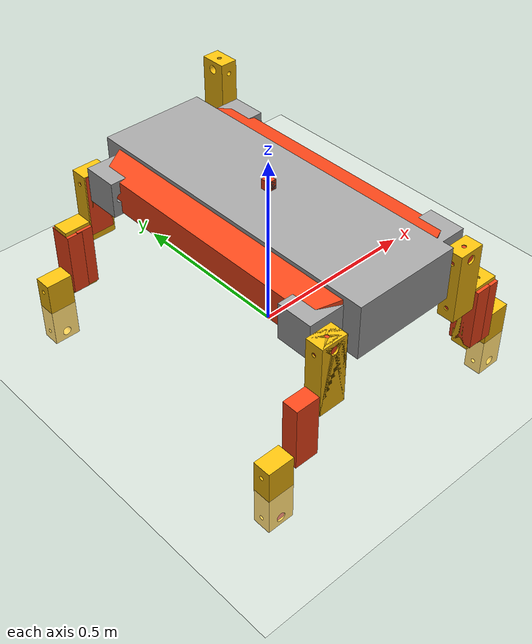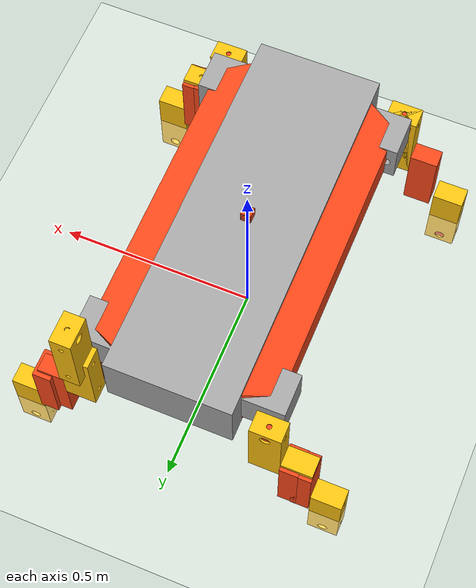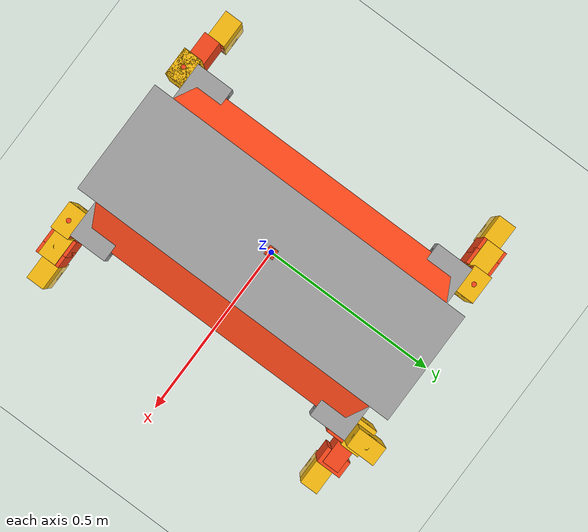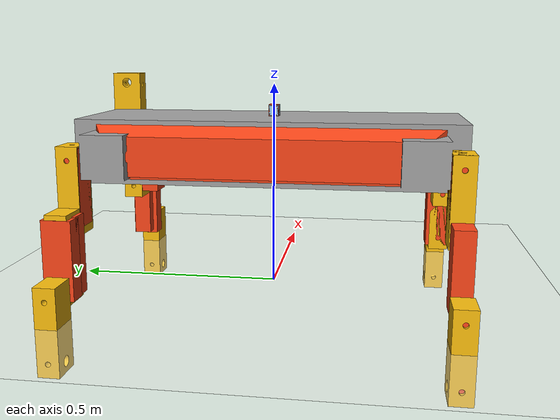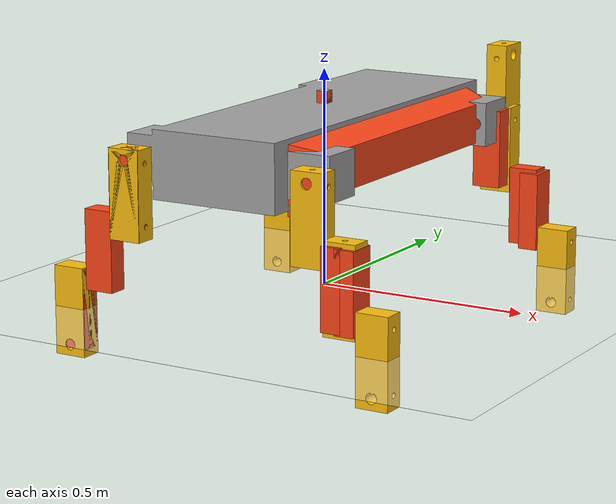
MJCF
<mujoco model="bad_robot">
  <default>
    <default class="robot">
      <default class="robstride_03">
        <joint armature="0.02" frictionloss="0.2" damping="0.01" actuatorfrcrange="-60.0 60.0" />
        <motor ctrlrange="-60.0 60.0" />
      </default>
      <default class="robstride_02">
        <joint armature="0.0042" frictionloss="0.1" damping="0.01" actuatorfrcrange="-17.0 17.0" />
        <motor ctrlrange="-17.0 17.0" />
      </default>
      <default class="visual">
        <geom material="visualgeom" contype="0" conaffinity="0" group="2" />
      </default>
      <default class="collision">
        <geom material="collision_material" condim="3" contype="0" conaffinity="1" priority="1" group="1" solref="0.005 1" solimp="0.99 0.999 1e-05" friction="0.64" />
      </default>
    </default>
    <mesh maxhullvert="64" />
    <default class="floor">
      <geom contype="1" conaffinity="1" group="0" type="plane" size="0 0 0.05" material="groundplane" rgba="1 1 1 0.3" />
    </default>
  </default>

  <compiler angle="radian" />

  <asset>
    <material name="base_material" rgba="1 0 0 1" />
    <material name="torso_material" rgba="0.647059 0.647059 0.647059 1" />
    <material name="IMU_material" rgba="0.615686 0.811765 0.929412 1" />
    <material name="leg_link_material" rgba="1 0.756863 0.054902 1" />
    <material name="default_material" rgba="0.7 0.7 0.7 1" />
    <material name="collision_material" rgba="1.0 0.28 0.1 0.9" />
    <mesh name="torso_collision.stl" file="meshes/torso_collision.stl" />
    <mesh name="torso.stl" file="meshes/torso.stl" />
    <mesh name="IMU_collision.stl" file="meshes/IMU_collision.stl" />
    <mesh name="IMU.stl" file="meshes/IMU.stl" />
    <mesh name="leg_link_collision.stl" file="meshes/leg_link_collision.stl" />
    <mesh name="leg_link.stl" file="meshes/leg_link.stl" />
    <mesh name="leg_link_5_collision.stl" file="meshes/leg_link_5_collision.stl" />
    <mesh name="leg_link_5.stl" file="meshes/leg_link_5.stl" />
    <mesh name="leg_link_9_collision.stl" file="meshes/leg_link_9_collision.stl" />
    <mesh name="leg_link_9.stl" file="meshes/leg_link_9.stl" />
    <mesh name="leg_link_2_collision.stl" file="meshes/leg_link_2_collision.stl" />
    <mesh name="leg_link_2.stl" file="meshes/leg_link_2.stl" />
    <mesh name="leg_link_6_collision.stl" file="meshes/leg_link_6_collision.stl" />
    <mesh name="leg_link_6.stl" file="meshes/leg_link_6.stl" />
    <mesh name="leg_link_10_collision.stl" file="meshes/leg_link_10_collision.stl" />
    <mesh name="leg_link_10.stl" file="meshes/leg_link_10.stl" />
    <mesh name="leg_link_3_collision.stl" file="meshes/leg_link_3_collision.stl" />
    <mesh name="leg_link_3.stl" file="meshes/leg_link_3.stl" />
    <mesh name="leg_link_7_collision.stl" file="meshes/leg_link_7_collision.stl" />
    <mesh name="leg_link_7.stl" file="meshes/leg_link_7.stl" />
    <mesh name="leg_link_11_collision.stl" file="meshes/leg_link_11_collision.stl" />
    <mesh name="leg_link_11.stl" file="meshes/leg_link_11.stl" />
    <mesh name="leg_link_4_collision.stl" file="meshes/leg_link_4_collision.stl" />
    <mesh name="leg_link_4.stl" file="meshes/leg_link_4.stl" />
    <mesh name="leg_link_8_collision.stl" file="meshes/leg_link_8_collision.stl" />
    <mesh name="leg_link_8.stl" file="meshes/leg_link_8.stl" />
    <mesh name="leg_link_12_collision.stl" file="meshes/leg_link_12_collision.stl" />
    <mesh name="leg_link_12.stl" file="meshes/leg_link_12.stl" />
    <texture type="2d" name="groundplane" builtin="checker" mark="edge" rgb1="0.2 0.3 0.4" rgb2="0.1 0.2 0.3" markrgb="0.8 0.8 0.8" width="300" height="300" />
    <material name="groundplane" texture="groundplane" texuniform="true" texrepeat="5 5" reflectance="0.2" />
  </asset>

  <worldbody>
    <body name="base" pos="0.00000000 0.00000000 0.34575001" quat="1 0 0 0" childclass="robot">
      <freejoint name="floating_base" />
      <geom name="base_visual" pos="0 0 0" quat="1.0 0.0 0.0 0.0" material="base_material" type="sphere" size="0.01" class="visual" />
      <body name="torso" pos="0 0 0" quat="1.0 0.0 0.0 0.0">
        <inertial pos="0 0 0" quat="1.0 0.0 0.0 0.0" mass="123.022540" diaginertia="9.238757 1.55296 10.325992" />
        <geom name="torso_collision" pos="0 0 0" quat="1.0 0.0 0.0 0.0" type="mesh" mesh="torso_collision.stl" class="collision" />
        <geom name="torso_visual" pos="0 0 0" quat="1.0 0.0 0.0 0.0" material="torso_material" type="mesh" mesh="torso.stl" class="visual" />
        <body name="IMU" pos="0 0 0.077200" quat="-1.7320510330969933e-07 0.999999999999985 0.0 -0.0">
          <inertial pos="0 0 -0.014010" quat="1.0 0.0 0.0 0.0" mass="0.022597" diaginertia="3e-06 3e-06 2e-06" />
          <geom name="IMU_collision" pos="0 0 0" quat="1.0 0.0 0.0 0.0" type="mesh" mesh="IMU_collision.stl" class="collision" />
          <geom name="IMU_visual" pos="0 0 0" quat="1.0 0.0 0.0 0.0" material="IMU_material" type="mesh" mesh="IMU.stl" class="visual" />
          <site name="IMU_site" quat="1.0 0.0 0.0 0.0" pos="0.0 0.0 0.0" />
        </body>
        <body name="leg_link" pos="-0.228600 -0.407400 0" quat="0.7071068967259818 -0.7071066656470943 0.0 0.0">
          <joint name="dof_fr" type="hinge" ref="0.0" class="robstride_03" range="-0.523599 2.094395" axis="0 0 1" />
          <inertial pos="0 0.078690 -0.025400" quat="1.0 0.0 0.0 0.0" mass="2.022037" diaginertia="0.007143 0.001452 0.007706" />
          <geom name="leg_link_collision" pos="0 0 0" quat="1.0 0.0 0.0 0.0" type="mesh" mesh="leg_link_collision.stl" class="collision" />
          <geom name="leg_link_visual" pos="0 0 0" quat="1.0 0.0 0.0 0.0" material="leg_link_material" type="mesh" mesh="leg_link.stl" class="visual" />
          <body name="leg_link_5" pos="-0.039100 0.146050 -0.025400" quat="0.7071068967259818 0.0 -0.7071066656470943 0.0">
            <joint name="dof_mid" type="hinge" ref="0.0" class="robstride_03" range="-1.570796 1.570796" axis="0 0 -1" />
            <inertial pos="0 0.067360 0.038100" quat="1.0 0.0 0.0 0.0" mass="2.022037" diaginertia="0.007706 0.001452 0.007143" />
            <geom name="leg_link_5_collision" pos="0 0 0" quat="1.0 0.0 0.0 0.0" type="mesh" mesh="leg_link_5_collision.stl" class="collision" />
            <geom name="leg_link_5_visual" pos="0 0 0" quat="1.0 0.0 0.0 0.0" material="leg_link_material" type="mesh" mesh="leg_link_5.stl" class="visual" />
            <body name="leg_link_9" pos="0 0.139700 0.077200" quat="-1.7320510330969933e-07 0.999999999999985 0.0 -0.0">
              <joint name="dof_bottom_3" type="hinge" ref="0.0" class="robstride_02" range="-1.570796 1.570796" axis="0 0 1" />
              <inertial pos="0 -0.067360 -0.038100" quat="1.0 0.0 0.0 0.0" mass="2.022037" diaginertia="0.007706 0.001452 0.007143" />
              <geom name="leg_link_9_collision" pos="0 0 0" quat="1.0 0.0 0.0 0.0" type="mesh" mesh="leg_link_9_collision.stl" class="collision" />
              <geom name="leg_link_9_visual" pos="0 0 0" quat="1.0 0.0 0.0 0.0" material="leg_link_material" type="mesh" mesh="leg_link_9.stl" class="visual" />
            </body>
          </body>
        </body>
        <body name="leg_link_2" pos="-0.228600 0.407400 0" quat="0.7071068967259818 -0.7071066656470943 0.0 0.0">
          <joint name="dof_br" type="hinge" ref="0.0" class="robstride_03" range="-2.094395 0.523599" axis="0 0 -1" />
          <inertial pos="0 0.078690 0.025400" quat="1.0 0.0 0.0 0.0" mass="2.022037" diaginertia="0.007143 0.001452 0.007706" />
          <geom name="leg_link_2_collision" pos="0 0 0" quat="1.0 0.0 0.0 0.0" type="mesh" mesh="leg_link_2_collision.stl" class="collision" />
          <geom name="leg_link_2_visual" pos="0 0 0" quat="1.0 0.0 0.0 0.0" material="leg_link_material" type="mesh" mesh="leg_link_2.stl" class="visual" />
          <body name="leg_link_6" pos="-0.039100 0.146050 0.025400" quat="0.7071068967259818 0.0 -0.7071066656470943 0.0">
            <joint name="dof_mid_2" type="hinge" ref="0.0" class="robstride_03" range="-1.570796 1.570796" axis="0 0 -1" />
            <inertial pos="0 0.067360 0.038100" quat="1.0 0.0 0.0 0.0" mass="2.022037" diaginertia="0.007706 0.001452 0.007143" />
            <geom name="leg_link_6_collision" pos="0 0 0" quat="1.0 0.0 0.0 0.0" type="mesh" mesh="leg_link_6_collision.stl" class="collision" />
            <geom name="leg_link_6_visual" pos="0 0 0" quat="1.0 0.0 0.0 0.0" material="leg_link_material" type="mesh" mesh="leg_link_6.stl" class="visual" />
            <body name="leg_link_10" pos="0 0.139700 0.077200" quat="-1.7320510330969933e-07 0.999999999999985 0.0 -0.0">
              <joint name="dof_bottom_4" type="hinge" ref="0.0" class="robstride_02" range="-1.570796 1.570796" axis="0 0 1" />
              <inertial pos="0 -0.067360 -0.038100" quat="1.0 0.0 0.0 0.0" mass="2.022037" diaginertia="0.007706 0.001452 0.007143" />
              <geom name="leg_link_10_collision" pos="0 0 0" quat="1.0 0.0 0.0 0.0" type="mesh" mesh="leg_link_10_collision.stl" class="collision" />
              <geom name="leg_link_10_visual" pos="0 0 0" quat="1.0 0.0 0.0 0.0" material="leg_link_material" type="mesh" mesh="leg_link_10.stl" class="visual" />
            </body>
          </body>
        </body>
        <body name="leg_link_3" pos="0.228600 0.407400 0" quat="-1.2247452309842457e-07 1.22474483074382e-07 0.7071066656470838 -0.7071068967259713">
          <joint name="dof_bl" type="hinge" ref="0.0" class="robstride_03" range="-0.523599 2.094395" axis="0 0 1" />
          <inertial pos="0 0.078690 -0.025400" quat="1.0 0.0 0.0 0.0" mass="2.022037" diaginertia="0.007143 0.001452 0.007706" />
          <geom name="leg_link_3_collision" pos="0 0 0" quat="1.0 0.0 0.0 0.0" type="mesh" mesh="leg_link_3_collision.stl" class="collision" />
          <geom name="leg_link_3_visual" pos="0 0 0" quat="1.0 0.0 0.0 0.0" material="leg_link_material" type="mesh" mesh="leg_link_3.stl" class="visual" />
          <body name="leg_link_7" pos="-0.039100 0.146050 -0.025400" quat="0.7071068967259818 0.0 -0.7071066656470943 0.0">
            <joint name="dof_bottom" type="hinge" ref="0.0" class="robstride_02" range="-1.570796 1.570796" axis="0 0 -1" />
            <inertial pos="0 0.072340 0.038100" quat="1.0 0.0 0.0 0.0" mass="2.022037" diaginertia="0.007706 0.001452 0.007143" />
            <geom name="leg_link_7_collision" pos="0 0 0" quat="1.0 0.0 0.0 0.0" type="mesh" mesh="leg_link_7_collision.stl" class="collision" />
            <geom name="leg_link_7_visual" pos="0 0 0" quat="1.0 0.0 0.0 0.0" material="leg_link_material" type="mesh" mesh="leg_link_7.stl" class="visual" />
            <body name="leg_link_11" pos="0 0.139700 0.077200" quat="-1.7320510330969933e-07 0.999999999999985 0.0 -0.0">
              <joint name="dof_mid_3" type="hinge" ref="0.0" class="robstride_03" range="-1.570796 1.570796" axis="0 0 1" />
              <inertial pos="0 -0.067360 -0.038100" quat="1.0 0.0 0.0 0.0" mass="2.022037" diaginertia="0.007706 0.001452 0.007143" />
              <geom name="leg_link_11_collision" pos="0 0 0" quat="1.0 0.0 0.0 0.0" type="mesh" mesh="leg_link_11_collision.stl" class="collision" />
              <geom name="leg_link_11_visual" pos="0 0 0" quat="1.0 0.0 0.0 0.0" material="leg_link_material" type="mesh" mesh="leg_link_11.stl" class="visual" />
            </body>
          </body>
        </body>
        <body name="leg_link_4" pos="0.228600 -0.407400 0" quat="-1.2247452309842457e-07 -1.22474483074382e-07 0.7071066656470838 0.7071068967259713">
          <joint name="dof_fl" type="hinge" ref="0.0" class="robstride_03" range="-2.094395 0.523599" axis="0 0 1" />
          <inertial pos="0 -0.078690 -0.025400" quat="1.0 0.0 0.0 0.0" mass="2.022037" diaginertia="0.007143 0.001452 0.007706" />
          <geom name="leg_link_4_collision" pos="0 0 0" quat="1.0 0.0 0.0 0.0" type="mesh" mesh="leg_link_4_collision.stl" class="collision" />
          <geom name="leg_link_4_visual" pos="0 0 0" quat="1.0 0.0 0.0 0.0" material="leg_link_material" type="mesh" mesh="leg_link_4.stl" class="visual" />
          <body name="leg_link_8" pos="-0.039100 -0.146050 -0.025400" quat="-1.2247452309842457e-07 0.7071068967259713 -1.22474483074382e-07 -0.7071066656470838">
            <joint name="dof_bottom_2" type="hinge" ref="0.0" class="robstride_02" range="-1.570796 1.570796" axis="0 0 -1" />
            <inertial pos="0 0.072340 0.038100" quat="1.0 0.0 0.0 0.0" mass="2.022037" diaginertia="0.007706 0.001452 0.007143" />
            <geom name="leg_link_8_collision" pos="0 0 0" quat="1.0 0.0 0.0 0.0" type="mesh" mesh="leg_link_8_collision.stl" class="collision" />
            <geom name="leg_link_8_visual" pos="0 0 0" quat="1.0 0.0 0.0 0.0" material="leg_link_material" type="mesh" mesh="leg_link_8.stl" class="visual" />
            <body name="leg_link_12" pos="0 0.139700 0.077200" quat="-1.7320510330969933e-07 0.999999999999985 0.0 -0.0">
              <joint name="dof_mid_4" type="hinge" ref="0.0" class="robstride_03" range="-1.570796 1.570796" axis="0 0 1" />
              <inertial pos="0 -0.067360 -0.038100" quat="1.0 0.0 0.0 0.0" mass="2.022037" diaginertia="0.007706 0.001452 0.007143" />
              <geom name="leg_link_12_collision" pos="0 0 0" quat="1.0 0.0 0.0 0.0" type="mesh" mesh="leg_link_12_collision.stl" class="collision" />
              <geom name="leg_link_12_visual" pos="0 0 0" quat="1.0 0.0 0.0 0.0" material="leg_link_material" type="mesh" mesh="leg_link_12.stl" class="visual" />
            </body>
          </body>
        </body>
      </body>
      <site name="base_site" pos="0 0 0" quat="1 0 0 0" />
      <camera name="front_camera" mode="track" fovy="90.0" quat="4.329780281177467e-17 4.329780281177466e-17 0.7071067811865475 0.7071067811865476" pos="0.0 2.0 0.5" />
      <camera name="side_camera" mode="track" fovy="90.0" quat="-0.5 -0.4999999999999999 0.5 0.5000000000000001" pos="-2.0 0.0 0.5" />
    </body>
    <geom name="floor" class="floor" size="0 0 0.05" />
  </worldbody>

  <actuator>
    <motor name="dof_fr_ctrl" joint="dof_fr" class="robstride_03" />
    <motor name="dof_mid_ctrl" joint="dof_mid" class="robstride_03" />
    <motor name="dof_bottom_3_ctrl" joint="dof_bottom_3" class="robstride_02" />
    <motor name="dof_br_ctrl" joint="dof_br" class="robstride_03" />
    <motor name="dof_mid_2_ctrl" joint="dof_mid_2" class="robstride_03" />
    <motor name="dof_bottom_4_ctrl" joint="dof_bottom_4" class="robstride_02" />
    <motor name="dof_bl_ctrl" joint="dof_bl" class="robstride_03" />
    <motor name="dof_bottom_ctrl" joint="dof_bottom" class="robstride_02" />
    <motor name="dof_mid_3_ctrl" joint="dof_mid_3" class="robstride_03" />
    <motor name="dof_fl_ctrl" joint="dof_fl" class="robstride_03" />
    <motor name="dof_bottom_2_ctrl" joint="dof_bottom_2" class="robstride_02" />
    <motor name="dof_mid_4_ctrl" joint="dof_mid_4" class="robstride_03" />
  </actuator>

  <contact>
    <exclude body1="torso" body2="IMU" />
    <exclude body1="torso" body2="leg_link" />
    <exclude body1="torso" body2="leg_link_2" />
    <exclude body1="torso" body2="leg_link_3" />
    <exclude body1="torso" body2="leg_link_4" />
    <exclude body1="leg_link" body2="leg_link_5" />
    <exclude body1="leg_link_2" body2="leg_link_6" />
    <exclude body1="leg_link_3" body2="leg_link_7" />
    <exclude body1="leg_link_4" body2="leg_link_8" />
    <exclude body1="leg_link_5" body2="leg_link_9" />
    <exclude body1="leg_link_6" body2="leg_link_10" />
    <exclude body1="leg_link_7" body2="leg_link_11" />
    <exclude body1="leg_link_8" body2="leg_link_12" />
  </contact>

  <sensor>
    <framepos name="base_site_pos" objtype="site" objname="base_site" />
    <framequat name="base_site_quat" objtype="site" objname="base_site" />
    <framelinvel name="base_site_linvel" objtype="site" objname="base_site" />
    <frameangvel name="base_site_angvel" objtype="site" objname="base_site" />
    <velocimeter name="base_site_vel" site="base_site" />
    <accelerometer name="IMU_acc" site="IMU_site" noise="0.01" />
    <gyro name="IMU_gyro" site="IMU_site" noise="0.01" />
    <magnetometer name="IMU_mag" site="IMU_site" noise="0.05" />
    <framepos name="IMU_site_pos" objtype="site" objname="IMU_site" />
    <framequat name="IMU_site_quat" objtype="site" objname="IMU_site" />
    <framelinvel name="IMU_site_linvel" objtype="site" objname="IMU_site" />
    <frameangvel name="IMU_site_angvel" objtype="site" objname="IMU_site" />
    <velocimeter name="IMU_site_vel" site="IMU_site" />
  </sensor>
</mujoco>
